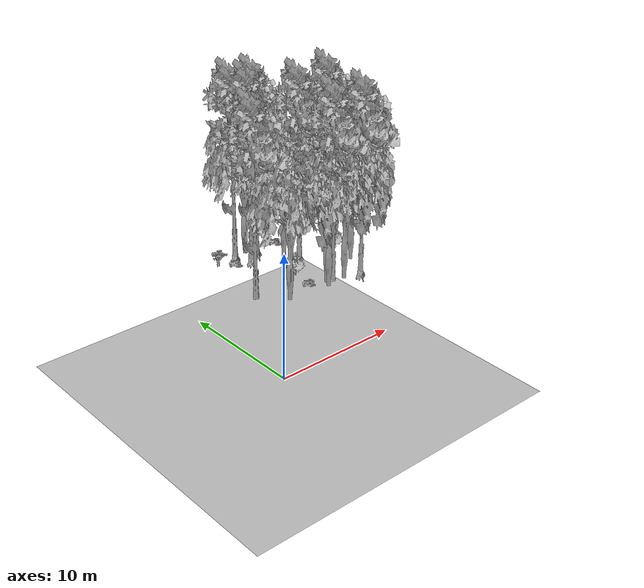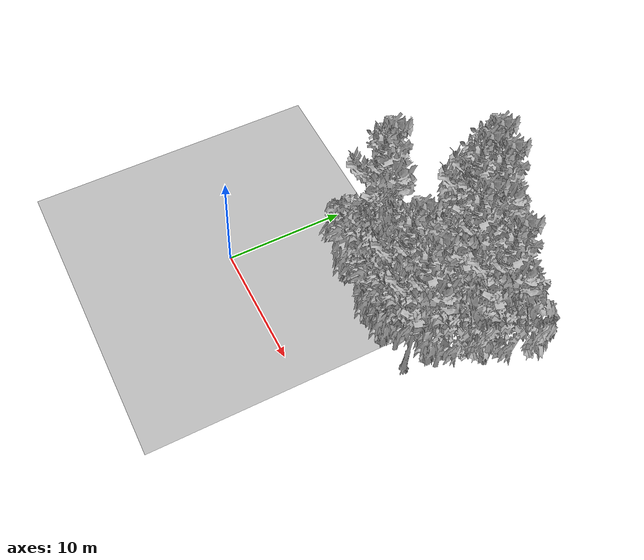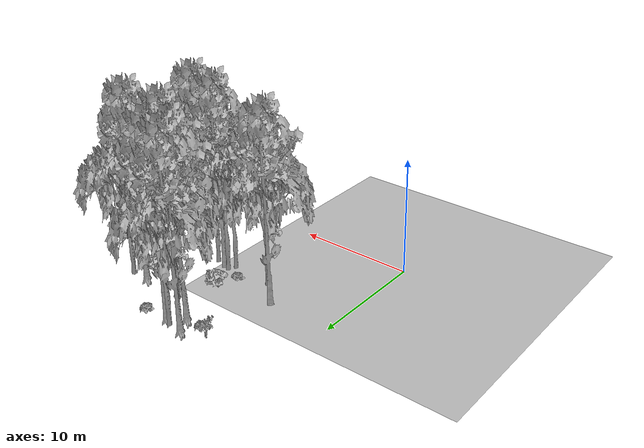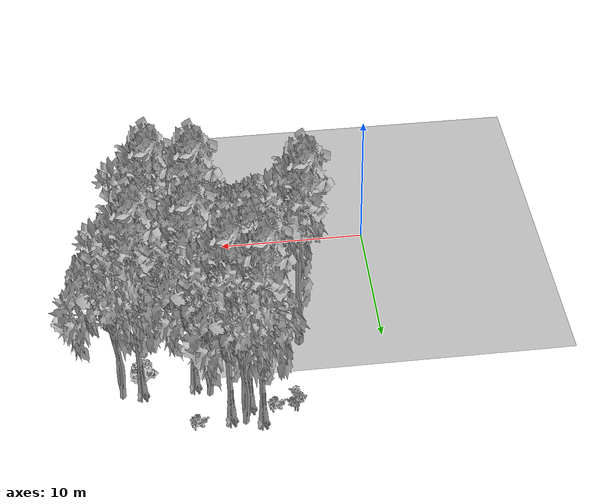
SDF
<sdf version="1.7">
 <world name="default">
  <model name="ground_plane">
   <static>1</static>
   <link name="link">
    <collision name="collision">
     <pose>-50 0 0 0 -0 0</pose>
     <geometry><plane><normal>0 0 1</normal><size>80 80</size></plane></geometry>
     <surface><contact><ode><min_depth>0.01</min_depth><max_vel>0</max_vel></ode></contact></surface>
    </collision>
    <visual name="grass">
     <cast_shadows>0</cast_shadows>
     <geometry>
      <mesh>
       <scale>0.46714285714285714 0.46714285714285714 0.1</scale>
       <uri>file://grass_plane/meshes/grass_plane.dae</uri>
      </mesh>
     </geometry>
    </visual>
   </link>
  </model>
  <model name="Tree 10">
   <static>1</static>
   <pose>17.154413551814493 13.50864388957185 0 1.57079 -0 0</pose>
   <link name="link">
    <collision name="collision">
     <geometry><mesh><scale>3.5 5 3.5</scale><uri>model://tree_2/meshes/tree_2.obj</uri></mesh></geometry>
    </collision>
    <visual name="visual">
     <geometry><mesh><scale>3.5 5 3.5</scale><uri>model://tree_2/meshes/tree_2.obj</uri></mesh></geometry>
    </visual>
   </link>
  </model>
  <model name="Tree 125">
   <static>1</static>
   <pose>5.560776006140813 10.041332953836118 0 1.57079 -0 0</pose>
   <link name="link">
    <collision name="collision">
     <geometry><mesh><scale>3.5 5 3.5</scale><uri>model://tree_9/meshes/tree_9.obj</uri></mesh></geometry>
    </collision>
    <visual name="visual">
     <geometry><mesh><scale>3.5 5 3.5</scale><uri>model://tree_9/meshes/tree_9.obj</uri></mesh></geometry>
    </visual>
   </link>
  </model>
  <model name="Tree 137">
   <static>1</static>
   <pose>11.615045141013006 13.903164968268683 0 1.57079 -0 0</pose>
   <link name="link">
    <collision name="collision">
     <geometry><mesh><scale>3.5 5 3.5</scale><uri>model://tree_2/meshes/tree_2.obj</uri></mesh></geometry>
    </collision>
    <visual name="visual">
     <geometry><mesh><scale>3.5 5 3.5</scale><uri>model://tree_2/meshes/tree_2.obj</uri></mesh></geometry>
    </visual>
   </link>
  </model>
  <model name="Tree 154">
   <static>1</static>
   <pose>10.505911565348349 16.091666568939253 0 1.57079 -0 0</pose>
   <link name="link">
    <collision name="collision">
     <geometry><mesh><scale>3.5 5 3.5</scale><uri>model://tree_9/meshes/tree_9.obj</uri></mesh></geometry>
    </collision>
    <visual name="visual">
     <geometry><mesh><scale>3.5 5 3.5</scale><uri>model://tree_9/meshes/tree_9.obj</uri></mesh></geometry>
    </visual>
   </link>
  </model>
  <model name="Tree 182">
   <static>1</static>
   <pose>12.139522391663348 8.273079066231574 0 1.57079 -0 0</pose>
   <link name="link">
    <collision name="collision">
     <geometry><mesh><scale>3.5 5 3.5</scale><uri>model://tree_9/meshes/tree_9.obj</uri></mesh></geometry>
    </collision>
    <visual name="visual">
     <geometry><mesh><scale>3.5 5 3.5</scale><uri>model://tree_9/meshes/tree_9.obj</uri></mesh></geometry>
    </visual>
   </link>
  </model>
  <model name="Tree 205">
   <static>1</static>
   <pose>7.426256461372439 8.153832220304736 0 1.57079 -0 0</pose>
   <link name="link">
    <collision name="collision">
     <geometry><mesh><scale>3.5 5 3.5</scale><uri>model://tree_2/meshes/tree_2.obj</uri></mesh></geometry>
    </collision>
    <visual name="visual">
     <geometry><mesh><scale>3.5 5 3.5</scale><uri>model://tree_2/meshes/tree_2.obj</uri></mesh></geometry>
    </visual>
   </link>
  </model>
  <model name="Tree 261">
   <static>1</static>
   <pose>15.685649571011169 10.048382620549319 0 1.57079 -0 0</pose>
   <link name="link">
    <collision name="collision">
     <geometry><mesh><scale>3.5 5 3.5</scale><uri>model://tree_2/meshes/tree_2.obj</uri></mesh></geometry>
    </collision>
    <visual name="visual">
     <geometry><mesh><scale>3.5 5 3.5</scale><uri>model://tree_2/meshes/tree_2.obj</uri></mesh></geometry>
    </visual>
   </link>
  </model>
  <model name="Tree 334">
   <static>1</static>
   <pose>15.990301900194957 13.274983122404855 0 1.57079 -0 0</pose>
   <link name="link">
    <collision name="collision">
     <geometry><mesh><scale>3.5 5 3.5</scale><uri>model://tree_9/meshes/tree_9.obj</uri></mesh></geometry>
    </collision>
    <visual name="visual">
     <geometry><mesh><scale>3.5 5 3.5</scale><uri>model://tree_9/meshes/tree_9.obj</uri></mesh></geometry>
    </visual>
   </link>
  </model>
  <model name="Tree 363">
   <static>1</static>
   <pose>11.519529741062811 8.403128704600284 0 1.57079 -0 0</pose>
   <link name="link">
    <collision name="collision">
     <geometry><mesh><scale>3.5 5 3.5</scale><uri>model://tree_2/meshes/tree_2.obj</uri></mesh></geometry>
    </collision>
    <visual name="visual">
     <geometry><mesh><scale>3.5 5 3.5</scale><uri>model://tree_2/meshes/tree_2.obj</uri></mesh></geometry>
    </visual>
   </link>
  </model>
  <model name="Tree 369">
   <static>1</static>
   <pose>8.534292787489825 16.549373638382356 0 1.57079 -0 0</pose>
   <link name="link">
    <collision name="collision">
     <geometry><mesh><scale>3.5 5 3.5</scale><uri>model://tree_9/meshes/tree_9.obj</uri></mesh></geometry>
    </collision>
    <visual name="visual">
     <geometry><mesh><scale>3.5 5 3.5</scale><uri>model://tree_9/meshes/tree_9.obj</uri></mesh></geometry>
    </visual>
   </link>
  </model>
  <model name="Tree 441">
   <static>1</static>
   <pose>12.616372506274118 12.995387220875259 0 1.57079 -0 0</pose>
   <link name="link">
    <collision name="collision">
     <geometry><mesh><scale>3.5 5 3.5</scale><uri>model://tree_9/meshes/tree_9.obj</uri></mesh></geometry>
    </collision>
    <visual name="visual">
     <geometry><mesh><scale>3.5 5 3.5</scale><uri>model://tree_9/meshes/tree_9.obj</uri></mesh></geometry>
    </visual>
   </link>
  </model>
  <model name="Tree 485">
   <static>1</static>
   <pose>11.215275931947652 7.832245109801114 0 1.57079 -0 0</pose>
   <link name="link">
    <collision name="collision">
     <geometry><mesh><scale>3.5 5 3.5</scale><uri>model://tree_2/meshes/tree_2.obj</uri></mesh></geometry>
    </collision>
    <visual name="visual">
     <geometry><mesh><scale>3.5 5 3.5</scale><uri>model://tree_2/meshes/tree_2.obj</uri></mesh></geometry>
    </visual>
   </link>
  </model>
  <model name="Tree 495">
   <static>1</static>
   <pose>9.538001349258202 16.56922839785848 0 1.57079 -0 0</pose>
   <link name="link">
    <collision name="collision">
     <geometry><mesh><scale>3.5 5 3.5</scale><uri>model://tree_2/meshes/tree_2.obj</uri></mesh></geometry>
    </collision>
    <visual name="visual">
     <geometry><mesh><scale>3.5 5 3.5</scale><uri>model://tree_2/meshes/tree_2.obj</uri></mesh></geometry>
    </visual>
   </link>
  </model>
  <model name="Tree 509">
   <static>1</static>
   <pose>14.816993760472442 7.814451963727137 0 1.57079 -0 0</pose>
   <link name="link">
    <collision name="collision">
     <geometry><mesh><scale>3.5 5 3.5</scale><uri>model://tree_9/meshes/tree_9.obj</uri></mesh></geometry>
    </collision>
    <visual name="visual">
     <geometry><mesh><scale>3.5 5 3.5</scale><uri>model://tree_9/meshes/tree_9.obj</uri></mesh></geometry>
    </visual>
   </link>
  </model>
  <model name="Tree 580">
   <static>1</static>
   <pose>13.048698949682311 7.97833350584429 0 1.57079 -0 0</pose>
   <link name="link">
    <collision name="collision">
     <geometry><mesh><scale>3.5 5 3.5</scale><uri>model://tree_2/meshes/tree_2.obj</uri></mesh></geometry>
    </collision>
    <visual name="visual">
     <geometry><mesh><scale>3.5 5 3.5</scale><uri>model://tree_2/meshes/tree_2.obj</uri></mesh></geometry>
    </visual>
   </link>
  </model>
  <model name="Tree 598">
   <static>1</static>
   <pose>9.247097316958332 15.241435779762554 0 1.57079 -0 0</pose>
   <link name="link">
    <collision name="collision">
     <geometry><mesh><scale>3.5 5 3.5</scale><uri>model://tree_9/meshes/tree_9.obj</uri></mesh></geometry>
    </collision>
    <visual name="visual">
     <geometry><mesh><scale>3.5 5 3.5</scale><uri>model://tree_9/meshes/tree_9.obj</uri></mesh></geometry>
    </visual>
   </link>
  </model>
  <model name="Bush 9">
   <static>1</static>
   <pose>10.367513629427009 10.84132408823261 0 1.57079 -0 0</pose>
   <link name="link">
    <collision name="collision">
     <geometry><mesh><scale>2 2 2</scale><uri>model://bush_1/meshes/bush_1.obj</uri></mesh></geometry>
     <surface><contact><collide_without_contact>false</collide_without_contact></contact></surface>
    </collision>
    <visual name="visual">
     <geometry><mesh><scale>2 2 2</scale><uri>model://bush_1/meshes/bush_1.obj</uri></mesh></geometry>
    </visual>
   </link>
  </model>
  <model name="Bush 56">
   <static>1</static>
   <pose>6.4725803049213795 16.025210828248916 0 1.57079 -0 0</pose>
   <link name="link">
    <collision name="collision">
     <geometry><mesh><scale>2 2 2</scale><uri>model://bush_5/meshes/bush_5.obj</uri></mesh></geometry>
     <surface><contact><collide_without_contact>false</collide_without_contact></contact></surface>
    </collision>
    <visual name="visual">
     <geometry><mesh><scale>2 2 2</scale><uri>model://bush_5/meshes/bush_5.obj</uri></mesh></geometry>
    </visual>
   </link>
  </model>
  <model name="Bush 143">
   <static>1</static>
   <pose>6.325224503686691 16.09056799080257 0 1.57079 -0 0</pose>
   <link name="link">
    <collision name="collision">
     <geometry><mesh><scale>2 2 2</scale><uri>model://bush_5/meshes/bush_5.obj</uri></mesh></geometry>
     <surface><contact><collide_without_contact>false</collide_without_contact></contact></surface>
    </collision>
    <visual name="visual">
     <geometry><mesh><scale>2 2 2</scale><uri>model://bush_5/meshes/bush_5.obj</uri></mesh></geometry>
    </visual>
   </link>
  </model>
  <model name="Bush 523">
   <static>1</static>
   <pose>7.5845712960189715 15.299827195977578 0 1.57079 -0 0</pose>
   <link name="link">
    <collision name="collision">
     <geometry><mesh><scale>2 2 2</scale><uri>model://bush_2/meshes/bush_2.obj</uri></mesh></geometry>
     <surface><contact><collide_without_contact>false</collide_without_contact></contact></surface>
    </collision>
    <visual name="visual">
     <geometry><mesh><scale>2 2 2</scale><uri>model://bush_2/meshes/bush_2.obj</uri></mesh></geometry>
    </visual>
   </link>
  </model>
  <model name="Bush 533">
   <static>1</static>
   <pose>12.575341849969462 16.20340111909853 0 1.57079 -0 0</pose>
   <link name="link">
    <collision name="collision">
     <geometry><mesh><scale>2 2 2</scale><uri>model://bush_2/meshes/bush_2.obj</uri></mesh></geometry>
     <surface><contact><collide_without_contact>false</collide_without_contact></contact></surface>
    </collision>
    <visual name="visual">
     <geometry><mesh><scale>2 2 2</scale><uri>model://bush_2/meshes/bush_2.obj</uri></mesh></geometry>
    </visual>
   </link>
  </model>
  <model name="Bush 552">
   <static>1</static>
   <pose>10.107408243780448 8.8835138057783 0 1.57079 -0 0</pose>
   <link name="link">
    <collision name="collision">
     <geometry><mesh><scale>2 2 2</scale><uri>model://bush_2/meshes/bush_2.obj</uri></mesh></geometry>
     <surface><contact><collide_without_contact>false</collide_without_contact></contact></surface>
    </collision>
    <visual name="visual">
     <geometry><mesh><scale>2 2 2</scale><uri>model://bush_2/meshes/bush_2.obj</uri></mesh></geometry>
    </visual>
   </link>
  </model>
  <model name="Bush 568">
   <static>1</static>
   <pose>15.89044226179469 12.183745511194097 0 1.57079 -0 0</pose>
   <link name="link">
    <collision name="collision">
     <geometry><mesh><scale>2 2 2</scale><uri>model://bush_1/meshes/bush_1.obj</uri></mesh></geometry>
     <surface><contact><collide_without_contact>false</collide_without_contact></contact></surface>
    </collision>
    <visual name="visual">
     <geometry><mesh><scale>2 2 2</scale><uri>model://bush_1/meshes/bush_1.obj</uri></mesh></geometry>
    </visual>
   </link>
  </model>
 </world>
</sdf>
